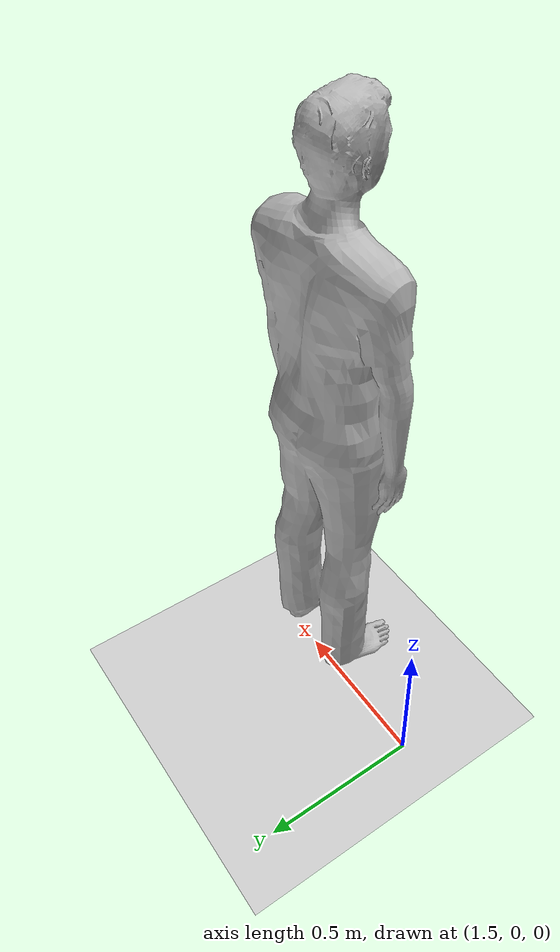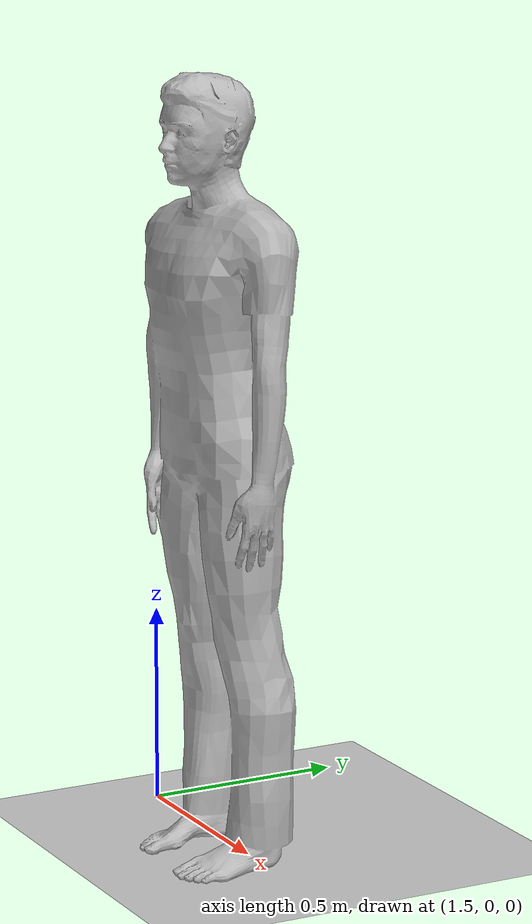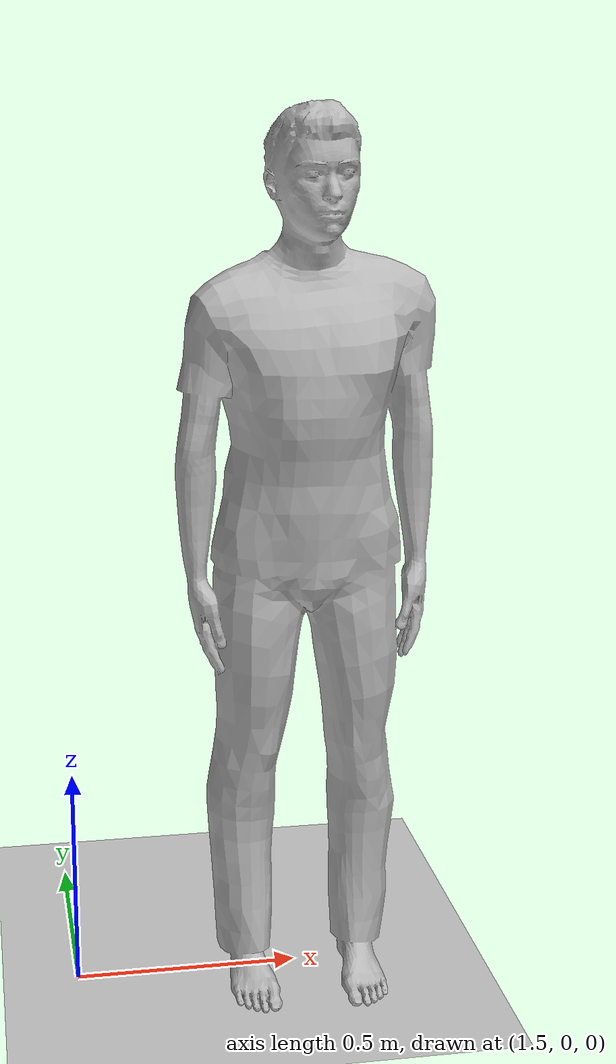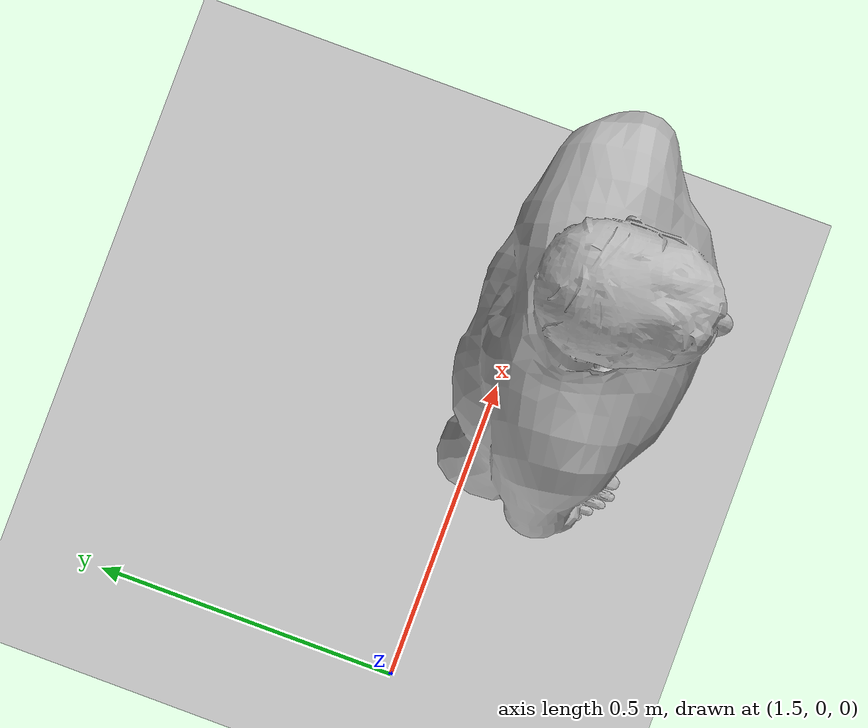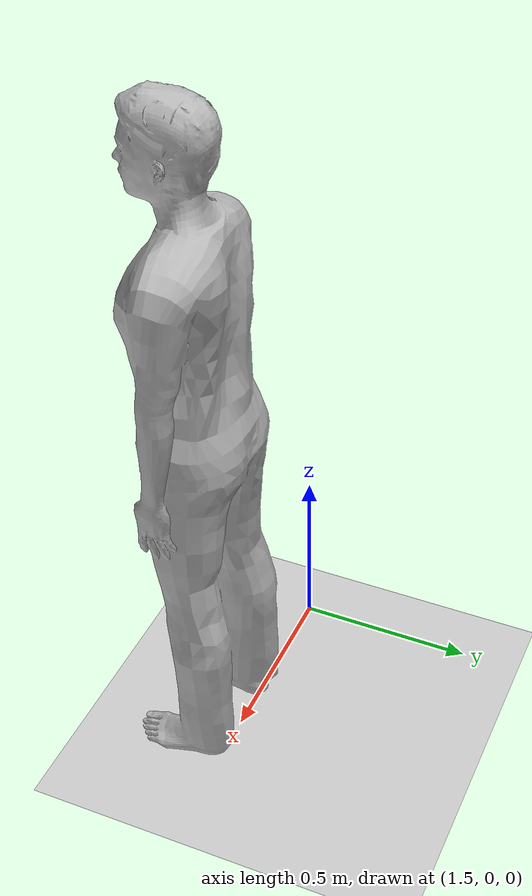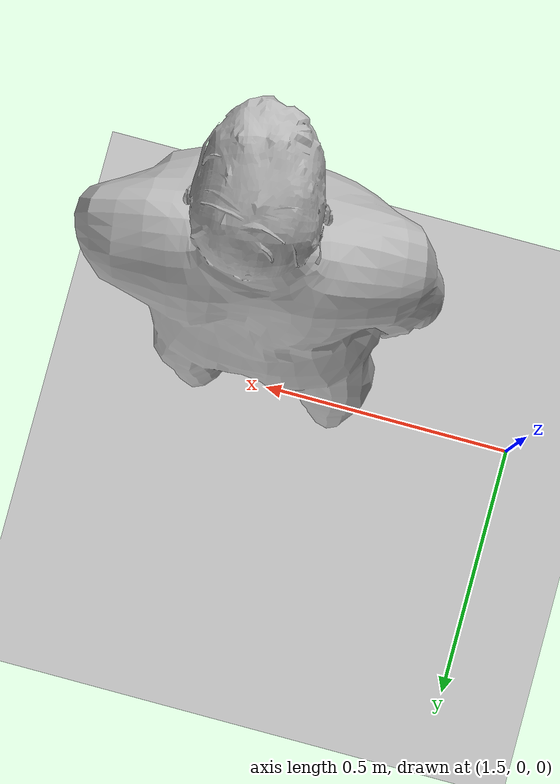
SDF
<sdf version='1.6'>
  <world name='default'>
    <include>
      <uri>model://ground_plane</uri>
    </include>

    <include>
      <uri>model://sun</uri>
    </include>

    <model name='stand0'>
      <link name='link'>
        <inertial>
          <pose frame=''>0 -0.1 0.95 0 -0 0</pose>
          <mass>80</mass>
          <inertia>
            <ixx>24.88</ixx>
            <ixy>0</ixy>
            <ixz>0</ixz>
            <iyy>25.73</iyy>
            <iyz>0</iyz>
            <izz>2.48</izz>
          </inertia>
        </inertial>
        <collision name='bottom'>
          <pose frame=''>0 -0.1 0.01 0 -0 0</pose>
          <geometry>
            <box>
              <size>0.5 0.35 0.02</size>
            </box>
          </geometry>
          <max_contacts>10</max_contacts>
          <surface>
            <contact>
              <ode/>
            </contact>
            <bounce/>
            <friction>
              <torsional>
                <ode/>
              </torsional>
              <ode/>
            </friction>
          </surface>
        </collision>
        <collision name='person'>
          <pose frame=''>0 0 0.02 0.04 -0 0</pose>
          <geometry>
            <mesh>
              <uri>model://person_standing/meshes/standing.dae</uri>
            </mesh>
          </geometry>
          <max_contacts>10</max_contacts>
          <surface>
            <contact>
              <ode/>
            </contact>
            <bounce/>
            <friction>
              <torsional>
                <ode/>
              </torsional>
              <ode/>
            </friction>
          </surface>
        </collision>
        <visual name='visual'>
          <pose frame=''>0 0 0.02 0.04 -0 0</pose>
          <geometry>
            <mesh>
              <uri>model://person_standing/meshes/standing.dae</uri>
            </mesh>
          </geometry>
        </visual>
        <self_collide>0</self_collide>
        <enable_wind>0</enable_wind>
        <kinematic>0</kinematic>
      </link>
      <pose frame=''>2 0 0 0 -0 0</pose>
    </model>
  </world>
</sdf>
